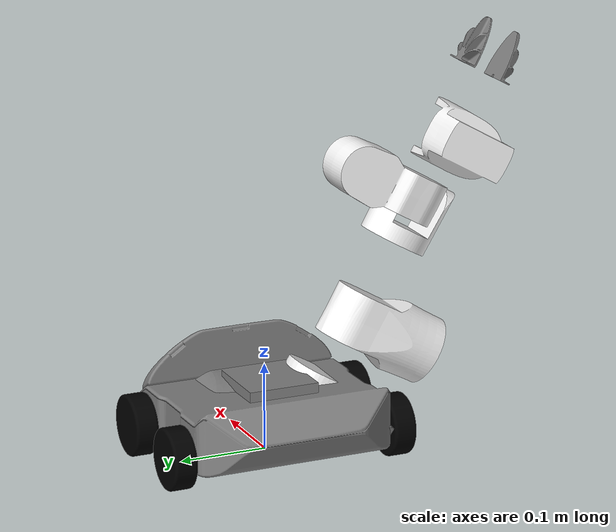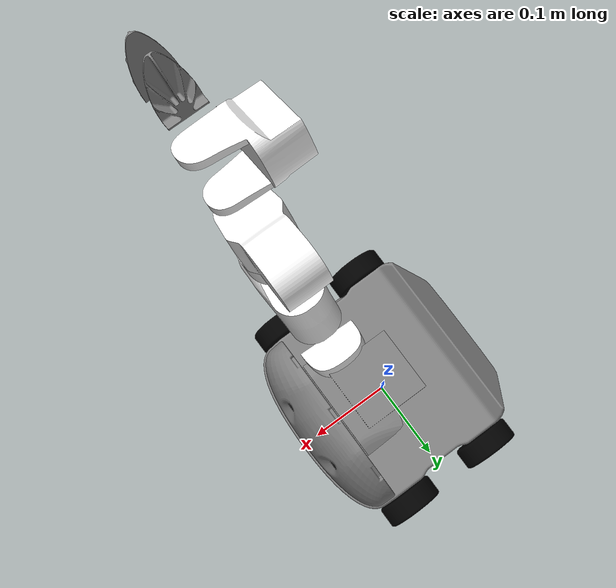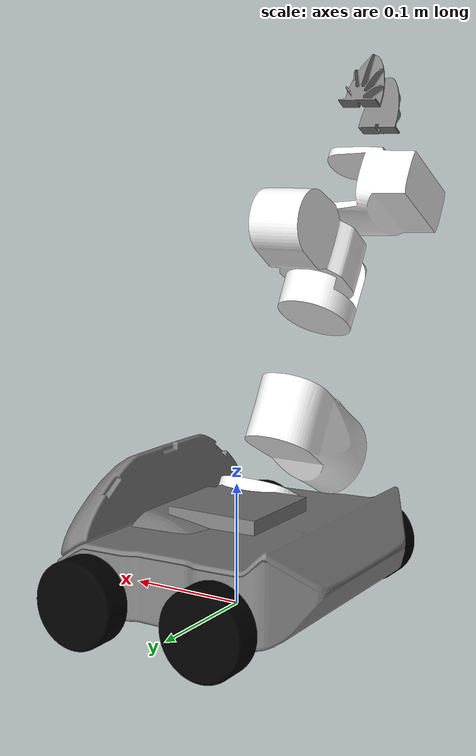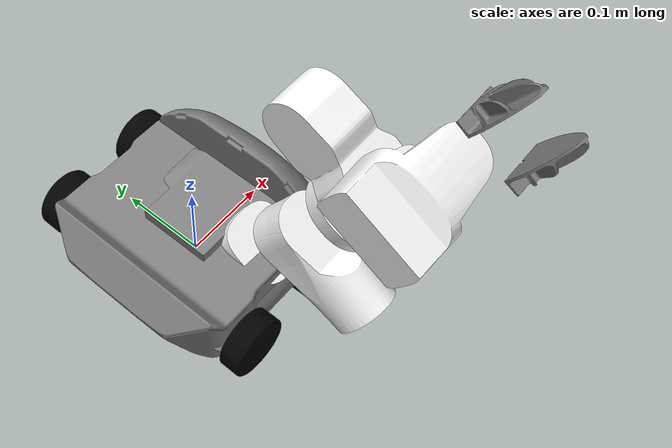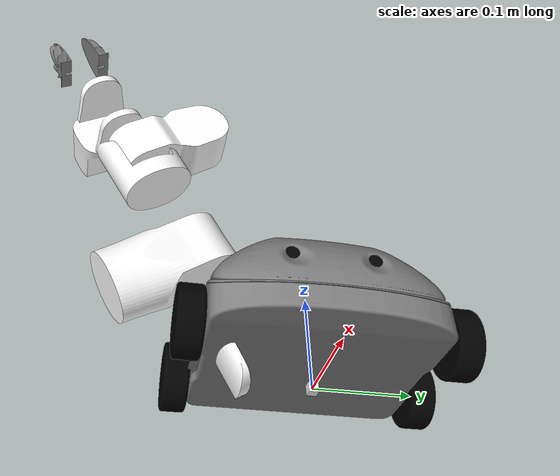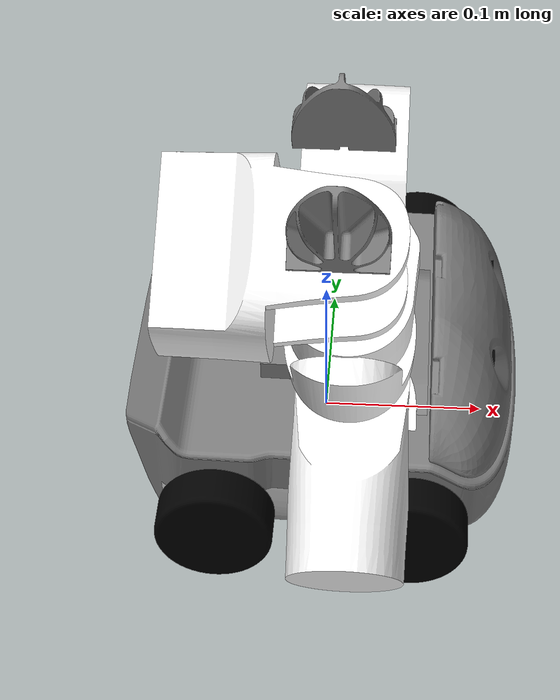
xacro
<?xml version="1.0"?>
<robot xmlns:xacro="http://www.ros.org/wiki/xacro" name="up1">

  <xacro:include filename="$(find up1_description)/xacro/common.xacro" />
  <xacro:include filename="$(find up1_description)/xacro/mono_arm_module/mono_arm_module.xacro" />
  <xacro:include filename="$(find up1_description)/xacro/base_module/base_module.xacro" />
  <xacro:include filename="$(find up1_description)/xacro/io_module/io_module.xacro" />

  <xacro:base_module />
  <xacro:io_module />
  <xacro:mono_arm_module />

</robot>

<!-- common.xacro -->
<robot xmlns:xacro="http://www.ros.org/wiki/xacro">

  <xacro:include filename="$(find up1_description)/xacro/common.gazebo.xacro" />

  <xacro:property name="pi" value="3.14159" />

  <xacro:property name="front_wheel_offset_x" value="0.05569" />
  <xacro:property name="front_wheel_offset_y" value="0.12922" />
  <xacro:property name="front_wheel_offset_z" value="-0.02110" />

  <xacro:property name="back_wheel_offset_x" value="-0.05883" />
  <xacro:property name="back_wheel_offset_y" value="0.12922" />
  <xacro:property name="back_wheel_offset_z" value="-0.02110" />

  <xacro:property name="io_offset_x" value="0.09136" />
  <xacro:property name="io_offset_y" value="0" />
  <xacro:property name="io_offset_z" value="0.03356" />

  <xacro:property name="camera_offset_x" value="-0.01219" />
  <xacro:property name="camera_offset_y" value="0.04027" />
  <xacro:property name="camera_offset_z" value="0.00023" />

  <xacro:property name="armroot_offset_x" value="-0.01247" />
  <xacro:property name="armroot_offset_y" value="0" />
  <xacro:property name="armroot_offset_z" value="0.05187" />

  <xacro:property name="armlink1_offset_x" value="0.01777" />
  <xacro:property name="armlink1_offset_y" value="0.07385" />
  <xacro:property name="armlink1_offset_z" value="0.01853" />

  <xacro:property name="armlink2_offset_x" value="0" />
  <xacro:property name="armlink2_offset_y" value="0" />
  <xacro:property name="armlink2_offset_z" value="-0.07038" />

  <xacro:property name="armlink3_offset_x" value="0" />
  <xacro:property name="armlink3_offset_y" value="0.09602" />
  <xacro:property name="armlink3_offset_z" value="0" />

  <xacro:property name="armlink4_offset_x" value="0" />
  <xacro:property name="armlink4_offset_y" value="0" />
  <xacro:property name="armlink4_offset_z" value="0.05588" />

  <xacro:property name="armlink5_offset_x" value="0" />
  <xacro:property name="armlink5_offset_y" value="0.07641" />
  <xacro:property name="armlink5_offset_z" value="0" />

  <xacro:property name="gripper_offset_x" value="0" />
  <xacro:property name="gripper_offset_y" value="0.138" />
  <xacro:property name="gripper_offset_z" value="0" />

  <xacro:property name="finger_offset_x" value="0.01800" />
  <xacro:property name="finger_offset_y" value="0.08121" />
  <xacro:property name="finger_offset_z" value="0" />

  <xacro:property name="armlink1_limit_lower" value="${-pi/2}" />
  <xacro:property name="armlink1_limit_upper" value="${pi/2}" />
  <xacro:property name="armlink2_limit_lower" value="${-pi/2}" />
  <xacro:property name="armlink2_limit_upper" value="${pi/2}" />
  <xacro:property name="armlink3_limit_lower" value="${-pi/2}" />
  <xacro:property name="armlink3_limit_upper" value="${pi/2}" />
  <xacro:property name="armlink4_limit_lower" value="${-pi/2}" />
  <xacro:property name="armlink4_limit_upper" value="${pi/2}" />
  <xacro:property name="armlink5_limit_lower" value="${-pi/2}" />
  <xacro:property name="armlink5_limit_upper" value="${pi/2}" />
  <xacro:property name="finger_limit_upper" value="0.018" />

  <xacro:property name="armlink1_velocity" value="1" />
  <xacro:property name="armlink2_velocity" value="1" />
  <xacro:property name="armlink3_velocity" value="1" />
  <xacro:property name="armlink4_velocity" value="1" />
  <xacro:property name="armlink5_velocity" value="1" />
  <xacro:property name="finger1_velocity" value="1" />
  <xacro:property name="finger2_velocity" value="1" />

  <xacro:property name="armlink1_effort" value="6.0" />
  <xacro:property name="armlink2_effort" value="6.0" />
  <xacro:property name="armlink3_effort" value="6.0" />
  <xacro:property name="armlink4_effort" value="6.0" />
  <xacro:property name="armlink5_effort" value="6.0" />
  <xacro:property name="finger1_effort" value="6.0" />
  <xacro:property name="finger2_effort" value="6.0" />

  <material name="black">
    <color rgba="0 0 0 1" />
  </material>
  <material name="white">
    <color rgba="1 1 1 1" />
  </material>
  <material name="red">
    <color rgba="1 0 0 1" />
  </material>
  <material name="grey">
    <color rgba=".5 .5 .5 1" />
  </material>
  <material name="green">
    <color rgba="0 1 0 1" />
  </material>
  <material name="blue">
    <color rgba="0 0 1 1" />
  </material>
  <material name="yellow">
    <color rgba="1 1 0 1" />
  </material>

  <xacro:common_gazebo />

</robot>

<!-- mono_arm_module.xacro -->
<robot xmlns:xacro="http://www.ros.org/wiki/xacro">

  <xacro:include filename="$(find up1_description)/xacro/mono_arm_module/arm.xacro" />
  <xacro:include filename="$(find up1_description)/xacro/mono_arm_module/gripper.xacro" />
  <xacro:include filename="$(find up1_description)/xacro/mono_arm_module/arm_module.gazebo.xacro" />

  <!-- ============================   Arm Module   ============================ -->
  <xacro:macro name="mono_arm_module">
    <!-- Armroot Joint -->
    <joint name="base_to_armroot" type="fixed">
      <parent link="base_link" />
      <child link="armroot_link" />
      <origin xyz="0.003804 -0.008022 0.001964" />
    </joint>
    <!-- Armroot Link -->
    <link name="armroot_link">
      <visual>
        <geometry>
          <mesh filename="package://up1_description/meshes/mono_arm/armroot.stl" scale="0.001 0.001 0.001" />
        </geometry>
        <material name="grey" />
      </visual>
      <collision>
        <geometry>
          <mesh filename="package://up1_description/meshes/mono_arm/armroot.stl" scale="0.001 0.001 0.001" />
        </geometry>
      </collision>
      <inertial>
        <mass value="0.17621"/>
        <!-- inertia is wrong, get update from Daniel -->
        <inertia ixx="0.00096240277" ixy="-0.00000350376" ixz="0.00002354169"
                 iyy="0.00057897825" iyz="0.00000127419" izz="0.00134814249"/>
      </inertial>
    </link>

    <xacro:arm_module_gazebo />

    <xacro:arm prefix="mono" reflect="1" />
    <xacro:gripper prefix="mono" reflect="1" />

  </xacro:macro>

</robot>

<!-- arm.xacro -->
<robot xmlns:xacro="http://www.ros.org/wiki/xacro">

  <xacro:include filename="$(find up1_description)/xacro/mono_arm_module/arm.gazebo.xacro" />

  <!-- ============================   Arm   ============================ -->
  <xacro:macro name="arm" params="prefix reflect">

    <!-- Arm Joint 1 -->
    <joint name="${prefix}_armroot_to_armlink1" type="revolute">
      <parent link="armroot_link" />
      <child link="${prefix}_armlink1" />
      <origin rpy="${-reflect*pi/6} ${pi} 0"
        xyz="${armlink1_offset_x} ${-reflect*armlink1_offset_y} ${armlink1_offset_z}" />
      <axis xyz="0 0 1" />
      <limit lower="${armlink1_limit_lower}" upper="${armlink1_limit_upper}" velocity="${armlink1_velocity}" effort="${armlink1_effort}" />
    </joint>
    <!-- Arm Link 1 -->
    <link name="${prefix}_armlink1">
      <visual>
        <geometry>
          <mesh filename="package://up1_description/meshes/mono_arm/armlink1.stl" scale="0.001 0.001 0.001" />
        </geometry>
        <material name="white" />
      </visual>
      <collision>
        <geometry>
          <mesh filename="package://up1_description/meshes/mono_arm/armlink1.stl" scale="0.001 0.001 0.001" />
        </geometry>
      </collision>
      <inertial>
        <mass value="0.06985"/>
        <inertia ixx="0.00023448766" ixy="0.0000000027" ixz="0.00000001913"
                 iyy="0.00024004726" iyz="-0.0000015393" izz="0.00007431363"/>
      </inertial>
    </link>

    <!-- Arm Joint 2 -->
    <joint name="${prefix}_armlink1_to_armlink2" type="revolute">
      <parent link="${prefix}_armlink1" />
      <child link="${prefix}_armlink2" />
      <origin rpy="${pi/2} ${pi} 0"
        xyz="${armlink2_offset_x} ${armlink2_offset_y} ${armlink2_offset_z}" />
      <axis xyz="0 0 ${reflect*1}" />
      <limit lower="${armlink2_limit_lower}" upper="${armlink2_limit_upper}" velocity="${armlink2_velocity}" effort="${armlink2_effort}" />
    </joint>
    <!-- Arm Link 2 -->
    <link name="${prefix}_armlink2">
      <visual>
        <geometry>
          <mesh filename="package://up1_description/meshes/mono_arm/armlink2.stl" scale="0.001 0.001 0.001" />
        </geometry>
        <material name="white" />
      </visual>
      <collision>
        <geometry>
          <mesh filename="package://up1_description/meshes/mono_arm/armlink2.stl" scale="0.001 0.001 0.001" />
        </geometry>
      </collision>
      <inertial>
        <mass value="0.07067"/>
        <inertia ixx="0.00029708797" ixy="-0.00000000444" ixz="0.00000000068"
                 iyy="0.0000799845" iyz="-0.00000174097" izz="0.00026073683"/>
      </inertial>
    </link>

    <!-- Arm Joint 3 -->
    <joint name="${prefix}_armlink2_to_armlink3" type="revolute">
      <parent link="${prefix}_armlink2" />
      <child link="${prefix}_armlink3" />
      <origin rpy="${-pi/2} ${pi} 0"
        xyz="${armlink3_offset_x} ${armlink3_offset_y} ${armlink3_offset_z}" />
      <axis xyz="0 0 -1" />
      <limit lower="${armlink3_limit_lower}" upper="${armlink3_limit_upper}" velocity="${armlink3_velocity}" effort="${armlink3_effort}" />
    </joint>
    <!-- Arm Link 3 -->
    <link name="${prefix}_armlink3">
      <visual>
        <geometry>
          <mesh filename="package://up1_description/meshes/mono_arm/armlink3.stl" scale="0.001 0.001 0.001" />
        </geometry>
        <material name="white" />
      </visual>
      <collision>
        <geometry>
          <mesh filename="package://up1_description/meshes/mono_arm/armlink3.stl" scale="0.001 0.001 0.001" />
        </geometry>
      </collision>
      <inertial>
        <mass value="0.04828"/>
        <inertia ixx="0.00010408822" ixy="0.00000002684" ixz="0.00000006554"
                 iyy="0.00008358122" iyz="0.00000001571" izz="0.00004453887"/>
      </inertial>
    </link>

    <!-- Arm Joint 4 -->
    <joint name="${prefix}_armlink3_to_armlink4" type="revolute">
      <parent link="${prefix}_armlink3" />
      <child link="${prefix}_armlink4" />
      <origin rpy="${pi/2} 0 0"
        xyz="${armlink4_offset_x} ${armlink4_offset_y} ${armlink4_offset_z}" />
      <axis xyz="0 0 ${reflect*1}" />
      <limit lower="${armlink4_limit_lower}" upper="${armlink4_limit_upper}" velocity="${armlink4_velocity}" effort="${armlink4_effort}" />
    </joint>
    <!-- Arm Link 4 -->
    <link name="${prefix}_armlink4">
      <visual>
        <geometry>
          <mesh filename="package://up1_description/meshes/mono_arm/armlink4.stl" scale="0.001 0.001 0.001" />
        </geometry>
        <material name="white" />
      </visual>
      <collision>
        <geometry>
          <mesh filename="package://up1_description/meshes/mono_arm/armlink4.stl" scale="0.001 0.001 0.001" />
        </geometry>
      </collision>
      <inertial>
        <mass value="0.07021"/>
        <inertia ixx="0.00022365714" ixy="0.00000581335" ixz="-0.00000002583"
                 iyy="0.00004497277" iyz="0.00000036702" izz="0.00022294807"/>
      </inertial>
    </link>

    <!-- Arm Joint 5 -->
    <joint name="${prefix}_armlink4_to_armlink5" type="revolute">
      <parent link="${prefix}_armlink4" />
      <child link="${prefix}_armlink5" />
      <origin rpy="0 ${pi/2} 0"
        xyz="${armlink5_offset_x} ${armlink5_offset_y} ${armlink5_offset_z}" />
      <axis xyz="0 0 ${-reflect*1}" />
      <limit lower="${armlink5_limit_lower}" upper="${armlink5_limit_upper}" velocity="${armlink5_velocity}" effort="${armlink5_effort}" />
    </joint>
    <!-- Arm Link 5 -->
    <link name="${prefix}_armlink5">
      <visual>
        <geometry>
          <mesh filename="package://up1_description/meshes/mono_arm/armlink5.stl" scale="0.001 0.001 0.001" />
        </geometry>
        <material name="white" />
      </visual>
      <collision>
        <geometry>
          <mesh filename="package://up1_description/meshes/mono_arm/armlink5.stl" scale="0.001 0.001 0.001" />
        </geometry>
      </collision>
      <inertial>
        <mass value="0.07134"/>
        <inertia ixx="0.00024486788" ixy="-0.00000179765" ixz="-0.0000013121"
                 iyy="0.00007141374" iyz="0.00000015595" izz="0.0002397239"/>
      </inertial>
    </link>

    <!-- Gripper Joint -->
    <joint name="${prefix}_gripper" type="fixed">
      <parent link="${prefix}_armlink5" />
      <child link="${prefix}_gripper" />
      <origin rpy="0 0 0"
        xyz="${gripper_offset_x} ${gripper_offset_y} ${gripper_offset_z}" />
    </joint>
    <!-- Gripper -->
    <link name="${prefix}_gripper" />

    <xacro:arm_gazebo prefix="${prefix}" />

  </xacro:macro>

</robot>

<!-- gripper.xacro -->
<robot xmlns:xacro="http://www.ros.org/wiki/xacro">

  <xacro:include filename="$(find up1_description)/xacro/mono_arm_module/gripper.gazebo.xacro" />

  <!-- ============================   Gripper   ============================ -->
  <xacro:macro name="gripper" params="prefix reflect">

    <!-- Finger Joint 1 -->
    <joint name="${prefix}_gripper_joint" type="prismatic">
      <parent link="${prefix}_armlink5" />
      <child link="${prefix}_finger1" />
      <origin rpy="0 ${pi/2} 0"
        xyz="${-finger_offset_x} ${finger_offset_y} ${finger_offset_z}" />
      <axis xyz="0 0 1" />
      <limit lower="0" upper="${finger_limit_upper}" velocity="${finger1_velocity}" effort="${finger1_effort}" />
    </joint>
    <!-- Finger Link 1 -->
    <link name="${prefix}_finger1">
      <visual>
        <geometry>
          <mesh filename="package://up1_description/meshes/mono_arm/finger.stl" scale="0.001 0.001 0.001" />
        </geometry>
        <material name="grey" />
      </visual>
      <collision>
        <geometry>
          <mesh filename="package://up1_description/meshes/mono_arm/finger.stl" scale="0.001 0.001 0.001" />
        </geometry>
      </collision>
      <inertial>
        <mass value="0.01174"/>
        <inertia ixx="0.00000285949" ixy="-0.00000001641" ixz="0.00000001803"
                 iyy="0.00000203198" iyz="-0.00000077289" izz="0.00000299021"/>
      </inertial>
    </link>

    <!-- Finger Joint 2 -->
    <joint name="${prefix}_gripper_joint_fake" type="prismatic">
      <parent link="${prefix}_armlink5" />
      <child link="${prefix}_finger2" />
      <origin rpy="0 ${-pi/2} 0"
        xyz="${finger_offset_x} ${finger_offset_y} ${finger_offset_z}" />
      <axis xyz="0 0 1" />
      <limit lower="0" upper="${finger_limit_upper}" velocity="${finger2_velocity}" effort="${finger2_effort}" />
      <mimic joint="${prefix}_gripper_joint" multiplier="1" offset="0"/>
    </joint>
    <!-- Finger Link 2 -->
    <link name="${prefix}_finger2">
      <visual>
        <geometry>
          <mesh filename="package://up1_description/meshes/mono_arm/finger.stl" scale="0.001 0.001 0.001" />
        </geometry>
        <material name="grey" />
      </visual>
      <collision>
        <geometry>
          <mesh filename="package://up1_description/meshes/mono_arm/finger.stl" scale="0.001 0.001 0.001" />
        </geometry>
      </collision>
      <inertial>
        <mass value="0.01174"/>
        <inertia ixx="0.00000285949" ixy="-0.00000001641" ixz="0.00000001803"
                 iyy="0.00000203198" iyz="-0.00000077289" izz="0.00000299021"/>
      </inertial>
    </link>

    <xacro:gripper_gazebo prefix="${prefix}" />

  </xacro:macro>

</robot>

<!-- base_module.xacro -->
<robot xmlns:xacro="http://www.ros.org/wiki/xacro">

  <xacro:include filename="$(find up1_description)/xacro/base_module/wheel.xacro" />
  <xacro:include filename="$(find up1_description)/xacro/base_module/base_module.gazebo.xacro" />

  <!-- ============================   Base Module   ============================ -->
  <xacro:macro name="base_module">

    <!-- base_footprint is a fictitious link(frame) that is on the ground right below base_link origin,
         navigation stack dedpends on this frame -->
    <link name="up1_footprint">
      <visual>
        <origin xyz="0 0 0" rpy="0 0 0" />
        <geometry>
          <box size="0.01 0.01 0.01" />
        </geometry>
        <material name="white" />
      </visual>
      <collision>
        <!-- represent base collision with a simple rectangular model, positioned by base_size_z s.t. top
             surface of the collision box matches the top surface of the PR2 base -->
        <origin xyz="0 0 ${0.051+0.04/2}" rpy="0 0 0" />
        <geometry>
          <box size="0.001 0.001 0.001" />
        </geometry>
      </collision>
    </link>
    <joint name="up1_footprint_joint" type="fixed">
      <origin xyz="0 0 0.051" rpy="0 0 0" />
      <child link="base_link" />
      <parent link="up1_footprint"/>
    </joint>

    <!-- Base Link -->
    <link name="base_link">
      <visual>
        <geometry>
          <mesh filename="package://up1_description/meshes/base/base.stl" scale="0.001 0.001 0.001" />
        </geometry>
        <material name="grey" />
      </visual>
      <collision>
        <geometry>
          <mesh filename="package://up1_description/meshes/base/base.stl" scale="0.001 0.001 0.001" />
        </geometry>
      </collision>
      <inertial>
        <mass value="0.30813"/>
        <inertia ixx="0.00175941073" ixy="0.00000172768" ixz="-0.00008279443"
                 iyy="0.00172024238" iyz="0.00000045789" izz="0.00311278092"/>
      </inertial>
    </link>

    <xacro:base_module_gazebo />

    <xacro:wheel prefix="right" reflect="1" />
    <xacro:wheel prefix="left" reflect="-1" />

  </xacro:macro>

</robot>

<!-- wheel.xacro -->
<robot xmlns:xacro="http://www.ros.org/wiki/xacro">

  <!-- ============================   Wheel   ============================ -->
  <xacro:macro name="wheel" params="prefix reflect">

    <!-- Front Wheel Joint -->
    <joint name="base_to_${prefix}_front_wheel" type="continuous">
      <parent link="base_link" />
      <child link="${prefix}_front_wheel" />
      <origin rpy="${reflect*pi/2} 0 0"
          xyz="${front_wheel_offset_x} ${-reflect*front_wheel_offset_y} ${front_wheel_offset_z}" />
      <axis xyz="0 0 ${-reflect*1}" />
    </joint>
    <!-- Front Wheel Link -->
    <link name="${prefix}_front_wheel">
      <visual>
        <geometry>
          <mesh filename="package://up1_description/meshes/base/wheel.stl" scale="0.001 0.001 0.001" />
        </geometry>
        <material name="black" />
      </visual>
      <collision>
        <geometry>
          <mesh filename="package://up1_description/meshes/base/wheel.stl" scale="0.001 0.001 0.001" />
        </geometry>
      </collision>
      <inertial>
        <mass value="0.01791"/>
        <inertia ixx="0.00000575118" ixy="-0.00000000224" ixz="0.0"
                 iyy="0.00000575882" iyz="0.0" izz="0.0000094354"/>
      </inertial>
    </link>

    <!-- Back Wheel Joint -->
    <joint name="base_to_${prefix}_back_wheel" type="continuous">
      <parent link="base_link" />
      <child link="${prefix}_back_wheel" />
      <origin rpy="${reflect*pi/2} 0 0"
          xyz="${back_wheel_offset_x} ${-reflect*back_wheel_offset_y} ${back_wheel_offset_z}" />
      <axis xyz="0 0 ${-reflect*1}" />
    </joint>
    <!-- Back Wheel Link -->
    <link name="${prefix}_back_wheel">
      <visual>
        <geometry>
          <mesh filename="package://up1_description/meshes/base/wheel.stl" scale="0.001 0.001 0.001" />
        </geometry>
        <material name="black" />
      </visual>
      <collision>
        <geometry>
          <mesh filename="package://up1_description/meshes/base/wheel.stl" scale="0.001 0.001 0.001" />
        </geometry>
      </collision>
      <inertial>
        <mass value="0.01791"/>
        <inertia ixx="0.00000575118" ixy="-0.00000000224" ixz="0.0"
                 iyy="0.00000575882" iyz="0.0" izz="0.0000094354"/>
      </inertial>
    </link>

  </xacro:macro>

</robot>

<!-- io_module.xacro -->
<robot xmlns:xacro="http://www.ros.org/wiki/xacro">

  <xacro:include filename="$(find up1_description)/xacro/io_module/camera.xacro" />
  <xacro:include filename="$(find up1_description)/xacro/io_module/io_module.gazebo.xacro" />

  <!-- ============================   IO Module   ============================ -->
  <xacro:macro name="io_module">

    <!-- IO Joint -->
    <joint name="base_to_io" type="fixed">
      <parent link="base_link" />
      <child link="io_link" />
      <origin xyz="${io_offset_x} ${io_offset_y} ${io_offset_z}" />
    </joint>
    <!-- IO Link -->
    <link name="io_link">
      <visual>
        <geometry>
          <mesh filename="package://up1_description/meshes/io/io.stl" scale="0.001 0.001 0.001" />
        </geometry>
        <material name="grey" />
      </visual>
      <collision>
        <geometry>
          <mesh filename="package://up1_description/meshes/io/io.stl" scale="0.001 0.001 0.001" />
        </geometry>
      </collision>
      <inertial>
        <mass value="0.09799"/>
        <inertia ixx="0.00036946993" ixy="0.00000010944" ixz="-0.00001523298"
                 iyy="0.00007193675" iyz="0.00000030515" izz="0.00034948153"/>
      </inertial>
    </link>

    <xacro:io_module_gazebo />

    <xacro:camera prefix="right" reflect="1" />
    <xacro:camera prefix="left" reflect="-1" />

  </xacro:macro>

</robot>

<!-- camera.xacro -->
<robot xmlns:xacro="http://www.ros.org/wiki/xacro">

  <!-- ============================   Camera   ============================ -->
  <xacro:macro name="camera" params="prefix reflect">

    <!-- Camera Joint -->
    <joint name="io_to_${prefix}_camera" type="fixed">
      <parent link="io_link" />
      <child link="${prefix}_camera" />
      <origin xyz="${camera_offset_x} ${-reflect*camera_offset_y} ${camera_offset_z}" />
    </joint>
    <!-- Camera Link -->
    <link name="${prefix}_camera">
      <visual>
        <geometry>
          <mesh filename="package://up1_description/meshes/io/camera.stl" scale="0.001 0.001 0.001" />
        </geometry>
        <material name="black" />
      </visual>
      <collision>
        <geometry>
          <mesh filename="package://up1_description/meshes/io/camera.stl" scale="0.001 0.001 0.001" />
        </geometry>
      </collision>
      <inertial>
        <mass value="0.00488"/>
        <inertia ixx="0.00000029098" ixy="0.0" ixz="0.0"
                 iyy="0.00000085538" iyz="0.0" izz="0.00000085538"/>
      </inertial>
    </link>

  </xacro:macro>

</robot>
